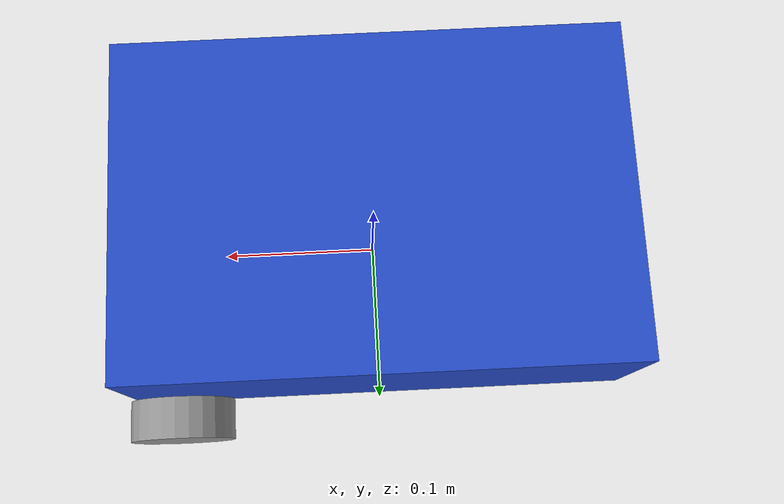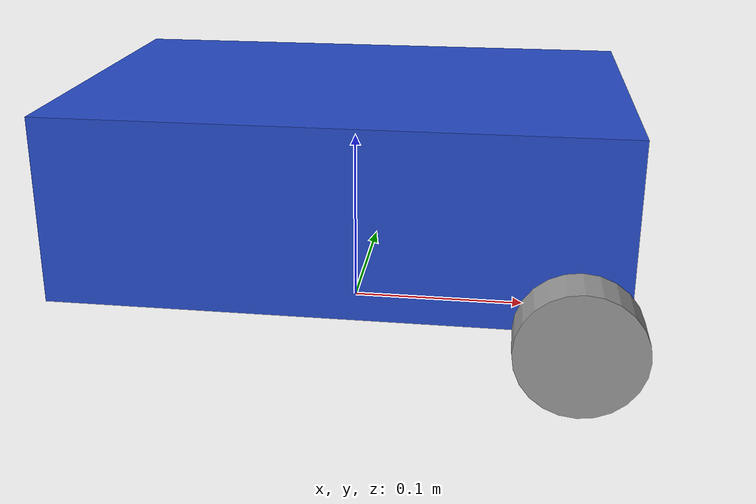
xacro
<?xml version="1.0"?>

<robot xmlns:xacro="http://www.ros.org/wiki/xacro" >
    <!--  Variáveis  -->
    <xacro:property name="base_length" value="0.3" />
    <xacro:property name="base_width" value="0.2" />
    <xacro:property name="base_height" value="0.1" />
    <xacro:property name="wheel_radius" value="0.0325" />
    <xacro:property name="wheel_length" value="0.025" />

    <link name="base_footprint"/>

    <link name="base_link">
        <visual>
            <geometry>
                <box size="${base_length} ${base_width} ${base_height}"/>
            </geometry>
            <origin xyz="0 0 ${base_height / 2.0}" rpy="0 0 0"/>
            <material name="blue"/>
        </visual>
        <collision>
            <geometry>
                <box size="${base_length} ${base_width} ${base_height}"/>
            </geometry>
            <origin xyz="0 0 ${base_height / 2.0}" rpy="0 0 0"/>
        </collision>
        <xacro:box_inertia m="5.0" l="${2*base_length}" w="${2*base_width}" h="${2*base_height}"
                           o_xyz="0 0 ${base_height / 2.0}" o_rpy="0 0 0" />

    </link>

    <joint name="base_joint" type="fixed">
        <parent link="base_footprint"/>
        <child link="base_link"/>
        <origin xyz="0 0 ${wheel_radius}"/>
    </joint>

    <xacro:macro name="wheel_link" params="prefix">
        <link name="${prefix}_wheel_link">
            <visual>
                <geometry>
                    <cylinder radius="${wheel_radius}" length="${wheel_length}"/>
                </geometry>
                <origin xyz="0.0 0.0 0.0" rpy="${pi / 2.0} 0.0 0.0"/>
                <material name="grey"/>
            </visual>
            <collision>
                <geometry>
                    <sphere radius="${wheel_radius}" />
                </geometry>
                <origin xyz="0.0 0.0 0.0" rpy="${pi / 2.0} 0.0 0.0"/>
            </collision>
            <xacro:cylinder_inertia m="1.0" r="${2*wheel_radius}" l="${2*wheel_length}" o_xyz="0.0 0.0 0.0" o_rpy="${pi / 2.0} 0.0 0.0" />
        </link>
    </xacro:macro>

    <xacro:wheel_link prefix="left" />

    <joint name="left_wheel_joint" type="continuous">
        <parent link="base_link"/>
        <child link="left_wheel_link"/>
        <origin xyz="${(base_length / 4.0)+0.05} ${(base_width + wheel_length) / 2.0} 0.0" rpy="0 0 0"/>
        <axis xyz="0 1 0"/>
    </joint>

    <xacro:wheel_link prefix="right" />

    <joint name="right_wheel_joint" type="continuous">
        <parent link="base_link"/>
        <child link="right_wheel_link"/>
        <origin xyz="${(base_length / 4.0)+0.05} ${- (base_width + wheel_length) / 2.0} 0" rpy="0 0 0"/>
        <axis xyz="0 1 0"/>
    </joint>

    <link name="caster_wheel_link">
        <visual>
            <geometry>
                <sphere radius="${wheel_radius / 2.0}"/>
            </geometry>
            <origin xyz="0.0 0.0 0.0" rpy="0.0 0.0 0.0"/>
            <material name="grey"/>
        </visual>
        <collision>
            <geometry>
                <sphere radius="${wheel_radius / 2.0}"/>
            </geometry>
            <origin xyz="0.0 0.0 0.0" rpy="0.0 0.0 0.0"/>
        </collision>
        <xacro:sphere_inertia m="0.5" r="${2*wheel_radius / 2.0}" o_xyz="0.0 0.0 0.0" o_rpy="0.0 0.0 0.0" />
    </link>

    <joint name="base_caster_wheel_joint" type="fixed">
        <parent link="base_link"/>
        <child link="caster_wheel_link"/>
        <origin xyz="${-base_length / 3.0} 0.0 ${- wheel_radius / 2.0}" rpy="0.0 0.0 0.0"/>
    </joint>
</robot>
